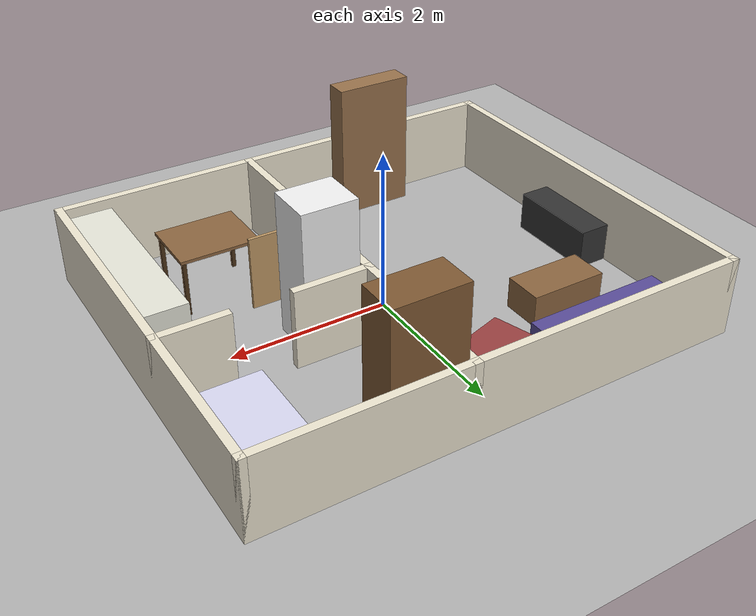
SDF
<?xml version="1.0"?>
<!-- apartment.sdf: GENERATED by generate_apartment.py (edit that script, not this file). -->
<sdf version="1.9">
  <world name="apartment">
    <physics name="1ms" type="ignored">
      <max_step_size>0.001</max_step_size>
      <real_time_factor>1.0</real_time_factor>
    </physics>

    <plugin filename="gz-sim-physics-system" name="gz::sim::systems::Physics"/>
    <plugin filename="gz-sim-user-commands-system" name="gz::sim::systems::UserCommands"/>
    <plugin filename="gz-sim-scene-broadcaster-system" name="gz::sim::systems::SceneBroadcaster"/>
    <plugin filename="gz-sim-sensors-system" name="gz::sim::systems::Sensors">
      <render_engine>ogre2</render_engine>
    </plugin>
    <plugin filename="gz-sim-imu-system" name="gz::sim::systems::Imu"/>

    <gravity>0 0 -9.8</gravity>
    <scene>
      <ambient>0.6 0.6 0.6 1</ambient>
      <background>0.8 0.85 0.9 1</background>
      <grid>false</grid>
    </scene>

    <light type="directional" name="sun">
      <cast_shadows>true</cast_shadows>
      <pose>0 0 10 0 0 0</pose>
      <diffuse>0.9 0.9 0.9 1</diffuse>
      <specular>0.2 0.2 0.2 1</specular>
      <direction>-0.5 0.1 -0.9</direction>
    </light>

    <model name="ground_plane">
      <static>true</static>
      <link name="link">
        <collision name="collision">
          <geometry><plane><normal>0 0 1</normal><size>100 100</size></plane></geometry>
          <surface><friction><ode><mu>1.0</mu><mu2>1.0</mu2></ode></friction></surface>
        </collision>
        <visual name="visual">
          <geometry><plane><normal>0 0 1</normal><size>100 100</size></plane></geometry>
          <material>
            <ambient>0.7 0.7 0.7 1</ambient>
            <diffuse>0.7 0.7 0.7 1</diffuse>
          </material>
        </visual>
      </link>
    </model>

    <model name="apartment">
      <static>true</static>
      <link name="walls">
      <collision name="wall_north_collision">
        <pose>0.000 2.500 0.500 0 0 0.000</pose>
        <geometry><box><size>6.100 0.100 1.000</size></box></geometry>
      </collision>
      <visual name="wall_north_visual">
        <pose>0.000 2.500 0.500 0 0 0.000</pose>
        <geometry><box><size>6.100 0.100 1.000</size></box></geometry>
        <material><ambient>0.93 0.9 0.82 1</ambient><diffuse>0.93 0.9 0.82 1</diffuse></material>
      </visual>
      <collision name="wall_south_collision">
        <pose>0.000 -2.500 0.500 0 0 0.000</pose>
        <geometry><box><size>6.100 0.100 1.000</size></box></geometry>
      </collision>
      <visual name="wall_south_visual">
        <pose>0.000 -2.500 0.500 0 0 0.000</pose>
        <geometry><box><size>6.100 0.100 1.000</size></box></geometry>
        <material><ambient>0.93 0.9 0.82 1</ambient><diffuse>0.93 0.9 0.82 1</diffuse></material>
      </visual>
      <collision name="wall_west_collision">
        <pose>-3.000 0.000 0.500 0 0 0.000</pose>
        <geometry><box><size>0.100 5.100 1.000</size></box></geometry>
      </collision>
      <visual name="wall_west_visual">
        <pose>-3.000 0.000 0.500 0 0 0.000</pose>
        <geometry><box><size>0.100 5.100 1.000</size></box></geometry>
        <material><ambient>0.93 0.9 0.82 1</ambient><diffuse>0.93 0.9 0.82 1</diffuse></material>
      </visual>
      <collision name="wall_east_collision">
        <pose>3.000 0.000 0.500 0 0 0.000</pose>
        <geometry><box><size>0.100 5.100 1.000</size></box></geometry>
      </collision>
      <visual name="wall_east_visual">
        <pose>3.000 0.000 0.500 0 0 0.000</pose>
        <geometry><box><size>0.100 5.100 1.000</size></box></geometry>
        <material><ambient>0.93 0.9 0.82 1</ambient><diffuse>0.93 0.9 0.82 1</diffuse></material>
      </visual>
      <collision name="wall_mid_1_collision">
        <pose>0.500 -2.050 0.500 0 0 0.000</pose>
        <geometry><box><size>0.100 1.000 1.000</size></box></geometry>
      </collision>
      <visual name="wall_mid_1_visual">
        <pose>0.500 -2.050 0.500 0 0 0.000</pose>
        <geometry><box><size>0.100 1.000 1.000</size></box></geometry>
        <material><ambient>0.93 0.9 0.82 1</ambient><diffuse>0.93 0.9 0.82 1</diffuse></material>
      </visual>
      <collision name="wall_mid_2_collision">
        <pose>0.500 0.200 0.500 0 0 0.000</pose>
        <geometry><box><size>0.100 2.100 1.000</size></box></geometry>
      </collision>
      <visual name="wall_mid_2_visual">
        <pose>0.500 0.200 0.500 0 0 0.000</pose>
        <geometry><box><size>0.100 2.100 1.000</size></box></geometry>
        <material><ambient>0.93 0.9 0.82 1</ambient><diffuse>0.93 0.9 0.82 1</diffuse></material>
      </visual>
      <collision name="wall_mid_3_collision">
        <pose>0.500 2.250 0.500 0 0 0.000</pose>
        <geometry><box><size>0.100 0.600 1.000</size></box></geometry>
      </collision>
      <visual name="wall_mid_3_visual">
        <pose>0.500 2.250 0.500 0 0 0.000</pose>
        <geometry><box><size>0.100 0.600 1.000</size></box></geometry>
        <material><ambient>0.93 0.9 0.82 1</ambient><diffuse>0.93 0.9 0.82 1</diffuse></material>
      </visual>
      <collision name="wall_bed_1_collision">
        <pose>0.950 0.500 0.500 0 0 0.000</pose>
        <geometry><box><size>1.000 0.100 1.000</size></box></geometry>
      </collision>
      <visual name="wall_bed_1_visual">
        <pose>0.950 0.500 0.500 0 0 0.000</pose>
        <geometry><box><size>1.000 0.100 1.000</size></box></geometry>
        <material><ambient>0.93 0.9 0.82 1</ambient><diffuse>0.93 0.9 0.82 1</diffuse></material>
      </visual>
      <collision name="wall_bed_2_collision">
        <pose>2.600 0.500 0.500 0 0 0.000</pose>
        <geometry><box><size>0.900 0.100 1.000</size></box></geometry>
      </collision>
      <visual name="wall_bed_2_visual">
        <pose>2.600 0.500 0.500 0 0 0.000</pose>
        <geometry><box><size>0.900 0.100 1.000</size></box></geometry>
        <material><ambient>0.93 0.9 0.82 1</ambient><diffuse>0.93 0.9 0.82 1</diffuse></material>
      </visual>
      </link>
      <link name="furniture">
      <collision name="sofa_collision">
        <pose>-1.750 2.050 0.225 0 0 0.000</pose>
        <geometry><box><size>1.800 0.700 0.450</size></box></geometry>
      </collision>
      <visual name="sofa_visual">
        <pose>-1.750 2.050 0.225 0 0 0.000</pose>
        <geometry><box><size>1.800 0.700 0.450</size></box></geometry>
        <material><ambient>0.35 0.3 0.6 1</ambient><diffuse>0.35 0.3 0.6 1</diffuse></material>
      </visual>
      <collision name="coffee_table_collision">
        <pose>-1.750 1.050 0.200 0 0 0.000</pose>
        <geometry><box><size>1.000 0.500 0.400</size></box></geometry>
      </collision>
      <visual name="coffee_table_visual">
        <pose>-1.750 1.050 0.200 0 0 0.000</pose>
        <geometry><box><size>1.000 0.500 0.400</size></box></geometry>
        <material><ambient>0.55 0.4 0.25 1</ambient><diffuse>0.55 0.4 0.25 1</diffuse></material>
      </visual>
      <collision name="tv_stand_collision">
        <pose>-2.750 0.000 0.250 0 0 0.000</pose>
        <geometry><box><size>0.400 1.200 0.500</size></box></geometry>
      </collision>
      <visual name="tv_stand_visual">
        <pose>-2.750 0.000 0.250 0 0 0.000</pose>
        <geometry><box><size>0.400 1.200 0.500</size></box></geometry>
        <material><ambient>0.2 0.2 0.2 1</ambient><diffuse>0.2 0.2 0.2 1</diffuse></material>
      </visual>
      <collision name="bookshelf_collision">
        <pose>-1.200 -2.300 0.900 0 0 0.000</pose>
        <geometry><box><size>1.000 0.300 1.800</size></box></geometry>
      </collision>
      <visual name="bookshelf_visual">
        <pose>-1.200 -2.300 0.900 0 0 0.000</pose>
        <geometry><box><size>1.000 0.300 1.800</size></box></geometry>
        <material><ambient>0.6 0.45 0.3 1</ambient><diffuse>0.6 0.45 0.3 1</diffuse></material>
      </visual>
      <collision name="armchair_collision">
        <pose>-0.300 1.900 0.250 0 0 0.300</pose>
        <geometry><box><size>0.700 0.700 0.500</size></box></geometry>
      </collision>
      <visual name="armchair_visual">
        <pose>-0.300 1.900 0.250 0 0 0.300</pose>
        <geometry><box><size>0.700 0.700 0.500</size></box></geometry>
        <material><ambient>0.6 0.25 0.25 1</ambient><diffuse>0.6 0.25 0.25 1</diffuse></material>
      </visual>
      <collision name="bed_collision">
        <pose>2.500 1.700 0.250 0 0 0.000</pose>
        <geometry><box><size>0.900 1.500 0.500</size></box></geometry>
      </collision>
      <visual name="bed_visual">
        <pose>2.500 1.700 0.250 0 0 0.000</pose>
        <geometry><box><size>0.900 1.500 0.500</size></box></geometry>
        <material><ambient>0.85 0.85 0.95 1</ambient><diffuse>0.85 0.85 0.95 1</diffuse></material>
      </visual>
      <collision name="wardrobe_collision">
        <pose>1.000 2.200 0.950 0 0 0.000</pose>
        <geometry><box><size>0.900 0.500 1.900</size></box></geometry>
      </collision>
      <visual name="wardrobe_visual">
        <pose>1.000 2.200 0.950 0 0 0.000</pose>
        <geometry><box><size>0.900 0.500 1.900</size></box></geometry>
        <material><ambient>0.5 0.35 0.2 1</ambient><diffuse>0.5 0.35 0.2 1</diffuse></material>
      </visual>
      <collision name="nightstand_collision">
        <pose>1.850 2.200 0.250 0 0 0.000</pose>
        <geometry><box><size>0.400 0.400 0.500</size></box></geometry>
      </collision>
      <visual name="nightstand_visual">
        <pose>1.850 2.200 0.250 0 0 0.000</pose>
        <geometry><box><size>0.400 0.400 0.500</size></box></geometry>
        <material><ambient>0.5 0.35 0.2 1</ambient><diffuse>0.5 0.35 0.2 1</diffuse></material>
      </visual>
      <collision name="counter_collision">
        <pose>2.700 -1.200 0.450 0 0 0.000</pose>
        <geometry><box><size>0.600 2.400 0.900</size></box></geometry>
      </collision>
      <visual name="counter_visual">
        <pose>2.700 -1.200 0.450 0 0 0.000</pose>
        <geometry><box><size>0.600 2.400 0.900</size></box></geometry>
        <material><ambient>0.9 0.9 0.85 1</ambient><diffuse>0.9 0.9 0.85 1</diffuse></material>
      </visual>
      <collision name="fridge_collision">
        <pose>0.900 0.100 0.900 0 0 0.000</pose>
        <geometry><box><size>0.700 0.600 1.800</size></box></geometry>
      </collision>
      <visual name="fridge_visual">
        <pose>0.900 0.100 0.900 0 0 0.000</pose>
        <geometry><box><size>0.700 0.600 1.800</size></box></geometry>
        <material><ambient>0.95 0.95 0.95 1</ambient><diffuse>0.95 0.95 0.95 1</diffuse></material>
      </visual>
      <collision name="kitchen_door_collision">
        <pose>0.950 -0.770 0.475 0 0 0.000</pose>
        <geometry><box><size>0.800 0.040 0.950</size></box></geometry>
      </collision>
      <visual name="kitchen_door_visual">
        <pose>0.950 -0.770 0.475 0 0 0.000</pose>
        <geometry><box><size>0.800 0.040 0.950</size></box></geometry>
        <material><ambient>0.75 0.6 0.4 1</ambient><diffuse>0.75 0.6 0.4 1</diffuse></material>
      </visual>
      <collision name="dining_top_collision">
        <pose>1.600 -1.400 0.740 0 0 0.000</pose>
        <geometry><box><size>1.000 0.800 0.040</size></box></geometry>
      </collision>
      <visual name="dining_top_visual">
        <pose>1.600 -1.400 0.740 0 0 0.000</pose>
        <geometry><box><size>1.000 0.800 0.040</size></box></geometry>
        <material><ambient>0.55 0.4 0.25 1</ambient><diffuse>0.55 0.4 0.25 1</diffuse></material>
      </visual>
      <collision name="dining_leg_1_collision">
        <pose>1.150 -1.050 0.360 0 0 0.000</pose>
        <geometry><box><size>0.050 0.050 0.720</size></box></geometry>
      </collision>
      <visual name="dining_leg_1_visual">
        <pose>1.150 -1.050 0.360 0 0 0.000</pose>
        <geometry><box><size>0.050 0.050 0.720</size></box></geometry>
        <material><ambient>0.3 0.2 0.1 1</ambient><diffuse>0.3 0.2 0.1 1</diffuse></material>
      </visual>
      <collision name="dining_leg_2_collision">
        <pose>2.050 -1.050 0.360 0 0 0.000</pose>
        <geometry><box><size>0.050 0.050 0.720</size></box></geometry>
      </collision>
      <visual name="dining_leg_2_visual">
        <pose>2.050 -1.050 0.360 0 0 0.000</pose>
        <geometry><box><size>0.050 0.050 0.720</size></box></geometry>
        <material><ambient>0.3 0.2 0.1 1</ambient><diffuse>0.3 0.2 0.1 1</diffuse></material>
      </visual>
      <collision name="dining_leg_3_collision">
        <pose>1.150 -1.750 0.360 0 0 0.000</pose>
        <geometry><box><size>0.050 0.050 0.720</size></box></geometry>
      </collision>
      <visual name="dining_leg_3_visual">
        <pose>1.150 -1.750 0.360 0 0 0.000</pose>
        <geometry><box><size>0.050 0.050 0.720</size></box></geometry>
        <material><ambient>0.3 0.2 0.1 1</ambient><diffuse>0.3 0.2 0.1 1</diffuse></material>
      </visual>
      <collision name="dining_leg_4_collision">
        <pose>2.050 -1.750 0.360 0 0 0.000</pose>
        <geometry><box><size>0.050 0.050 0.720</size></box></geometry>
      </collision>
      <visual name="dining_leg_4_visual">
        <pose>2.050 -1.750 0.360 0 0 0.000</pose>
        <geometry><box><size>0.050 0.050 0.720</size></box></geometry>
        <material><ambient>0.3 0.2 0.1 1</ambient><diffuse>0.3 0.2 0.1 1</diffuse></material>
      </visual>
      <collision name="plant_pot_collision">
        <pose>0.100 -2.150 0.225 0 0 0.000</pose>
        <geometry><box><size>0.300 0.300 0.450</size></box></geometry>
      </collision>
      <visual name="plant_pot_visual">
        <pose>0.100 -2.150 0.225 0 0 0.000</pose>
        <geometry><box><size>0.300 0.300 0.450</size></box></geometry>
        <material><ambient>0.3 0.55 0.3 1</ambient><diffuse>0.3 0.55 0.3 1</diffuse></material>
      </visual>
      </link>
    </model>
  </world>
</sdf>
